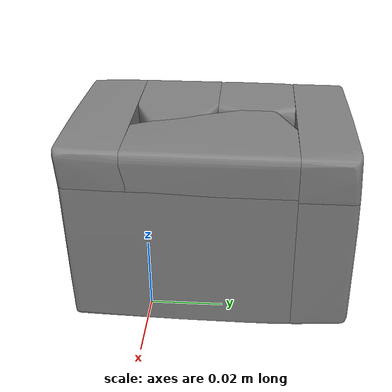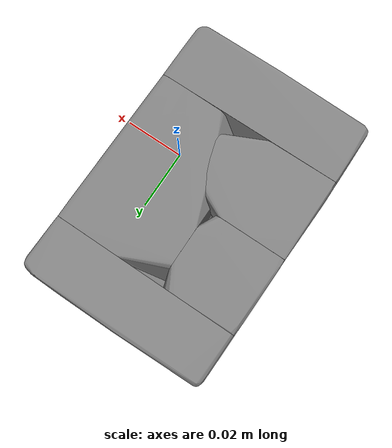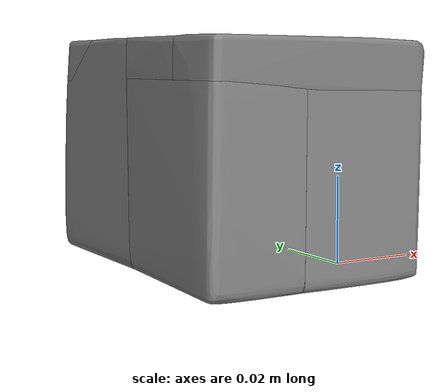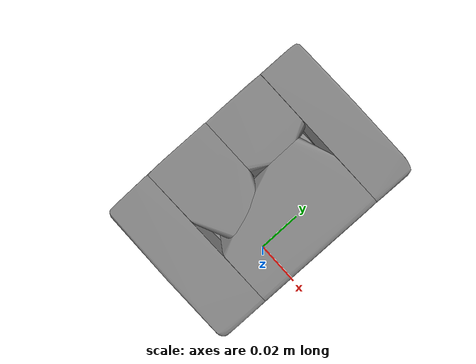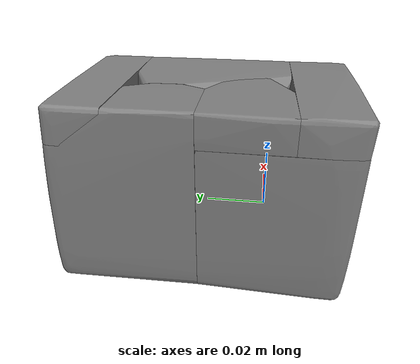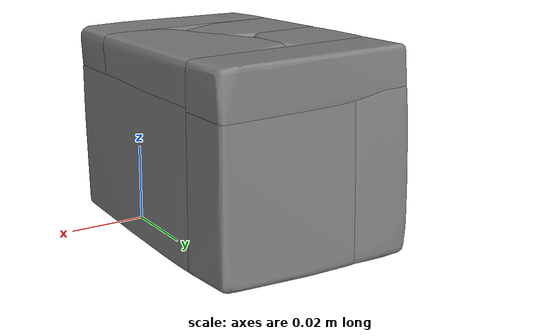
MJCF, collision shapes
<mujoco model="ycb_061_foam_brick">
  <compiler meshdir="meshes" texturedir="meshes" angle="radian"/>
  <default>
    <default class="visual"><geom contype="0" conaffinity="0" group="2" density="0"/></default>
    <default class="collision"><geom group="3"/></default>
  </default>
  <asset>
    <texture name="ycb_061_foam_brick_tex" type="2d" file="ycb_061_foam_brick_texture.png"/>
    <material name="ycb_061_foam_brick_mat" texture="ycb_061_foam_brick_tex" specular="0.2" shininess="0.3"/>
    <mesh name="ycb_061_foam_brick_visual" file="ycb_061_foam_brick_visual.obj"/>
    <mesh name="ycb_061_foam_brick_hull0" file="ycb_061_foam_brick_hull0.obj"/>
    <mesh name="ycb_061_foam_brick_hull1" file="ycb_061_foam_brick_hull1.obj"/>
    <mesh name="ycb_061_foam_brick_hull2" file="ycb_061_foam_brick_hull2.obj"/>
    <mesh name="ycb_061_foam_brick_hull3" file="ycb_061_foam_brick_hull3.obj"/>
    <mesh name="ycb_061_foam_brick_hull4" file="ycb_061_foam_brick_hull4.obj"/>
    <mesh name="ycb_061_foam_brick_hull5" file="ycb_061_foam_brick_hull5.obj"/>
    <mesh name="ycb_061_foam_brick_hull6" file="ycb_061_foam_brick_hull6.obj"/>
    <mesh name="ycb_061_foam_brick_hull7" file="ycb_061_foam_brick_hull7.obj"/>
  </asset>
  <worldbody>
    <body name="object" pos="0 0 0">
      <freejoint name="object_free"/>
      <geom type="mesh" mesh="ycb_061_foam_brick_visual" material="ycb_061_foam_brick_mat" class="visual"/>
      <geom type="mesh" mesh="ycb_061_foam_brick_hull0" class="collision"/>
      <geom type="mesh" mesh="ycb_061_foam_brick_hull1" class="collision"/>
      <geom type="mesh" mesh="ycb_061_foam_brick_hull2" class="collision"/>
      <geom type="mesh" mesh="ycb_061_foam_brick_hull3" class="collision"/>
      <geom type="mesh" mesh="ycb_061_foam_brick_hull4" class="collision"/>
      <geom type="mesh" mesh="ycb_061_foam_brick_hull5" class="collision"/>
      <geom type="mesh" mesh="ycb_061_foam_brick_hull6" class="collision"/>
      <geom type="mesh" mesh="ycb_061_foam_brick_hull7" class="collision"/>
    </body>
  </worldbody>
</mujoco>
